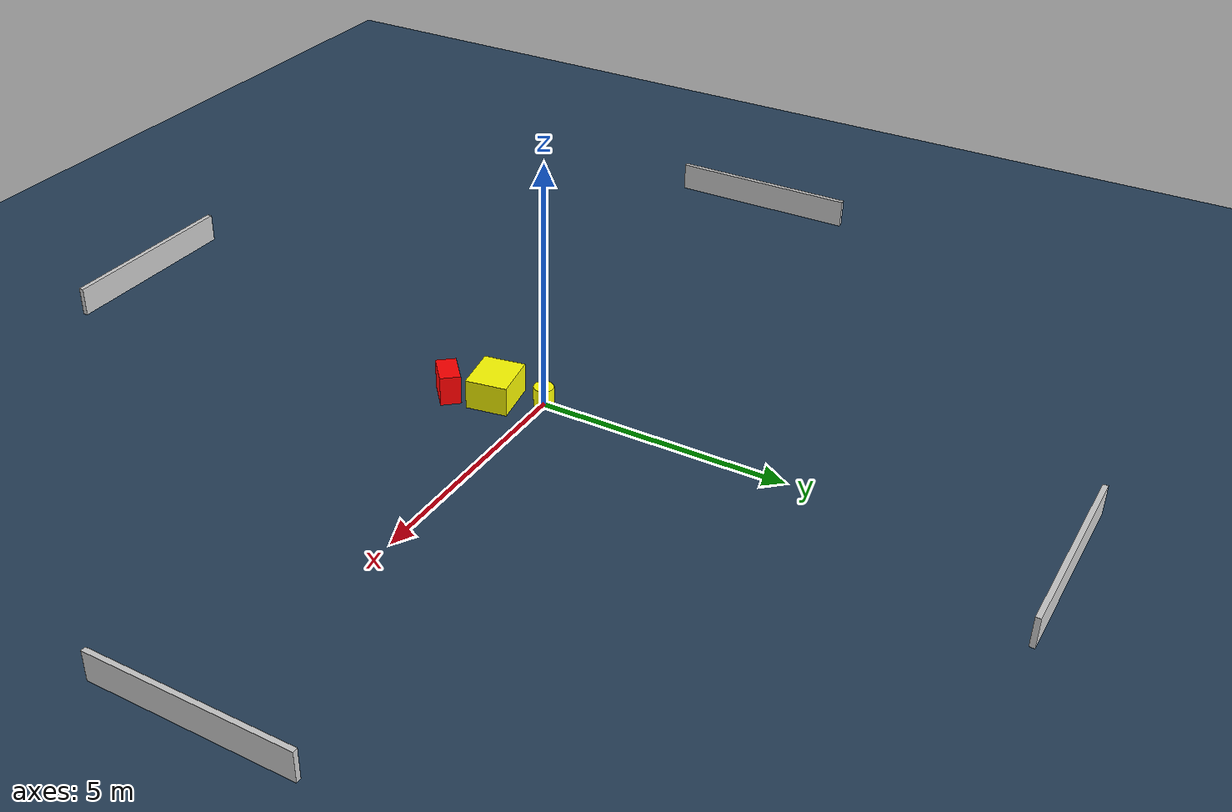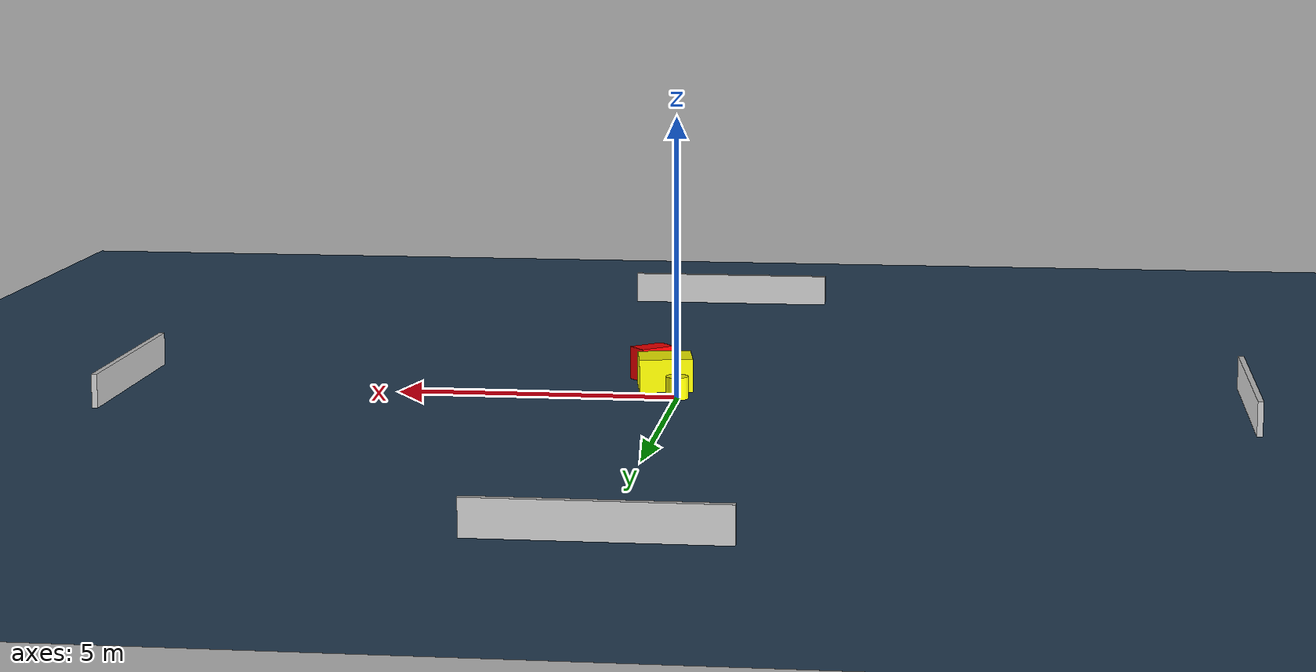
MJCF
<?xml version="1.0" ?>
<mujoco model="generated_environment">
  <option timestep="0.01" integrator="RK4" cone="elliptic"/>
  <default>
    <geom density="1"/>
  </default>
  <asset>
    <texture builtin="gradient" height="3072" name="skybox" rgb1="0.3 0.5 0.7" rgb2="0 0 0" type="skybox" width="512"/>
    <texture builtin="checker" height="300" name="groundplane" rgb1="0.2 0.3 0.4" rgb2="0.1 0.2 0.3" type="2d" width="300"/>
    <material name="groundplane" reflectance="0.2" texrepeat="5 5" texture="groundplane"/>
  </asset>
  <worldbody>
    <light dir="0 0 -1" directional="true" pos="0 0 1.5"/>
    <geom condim="3" friction="0.5 0.005 0.001" material="groundplane" name="floor" pos="0 0 0" size="0 0 0.05" type="plane"/>
    <body name="walls">
      <geom name="wall_1" condim="4" pos="-10.0 0.0 0.3" rgba="0.800000011920929 0.800000011920929 0.800000011920929 1.0" size="0.05 2.0 0.3" type="box"/>
      <geom name="wall_2" condim="4" pos="10.0 0.0 0.3" rgba="0.800000011920929 0.800000011920929 0.800000011920929 1.0" size="0.05 2.0 0.3" type="box"/>
      <geom name="wall_3" condim="4" pos="0.0 -10.0 0.3" rgba="0.800000011920929 0.800000011920929 0.800000011920929 1.0" size="2.0 0.05 0.3" type="box"/>
      <geom name="wall_4" condim="4" pos="0.0 10.0 0.3" rgba="0.800000011920929 0.800000011920929 0.800000011920929 1.0" size="2.0 0.05 0.3" type="box"/>
    </body>
    <body name="robot">
      <joint name="joint_x" type="slide" pos="0 0 0" axis="1 0 0"/>
      <joint name="joint_y" type="slide" pos="0 0 0" axis="0 1 0"/>
      <geom name="robot" type="cylinder" pos="0.0 0.0 0.2" size="0.2 0.2 0.0" mass="5.0" friction="1.0 0.005 0.0001" condim="4" rgba="1.0 1.0 0.0 1.0"/>
    </body>
    <body name="obstacle_1_movable">
      <geom name="obstacle_1_movable" condim="4" pos="0.3167094575581289 -0.8829880566539846 0.3" euler="0 0 99.70351368071259" friction="0.0 0.005 0.001" rgba="1.0 1.0 0.0 1.0" size="0.4164621997731289 0.48116125254163 0.3" type="box" mass="0.1"/>
      <joint type="free"/>
    </body>
    <body name="obstacle_2_static">
      <geom name="obstacle_2_static" condim="4" pos="0.6606590984333298 -1.7393811945176745 0.3" euler="0 0 221.0433865041351" friction="0.0 0.005 0.001" rgba="1.0 0.0 0.0 1.0" size="0.33886125498964825 0.20332437120426133 0.3" type="box"/>
    </body>
  </worldbody>
  <actuator>
    <motor name="actuator_x" joint="joint_x" gear="1" ctrlrange="-1 1"/>
    <motor name="actuator_y" joint="joint_y" gear="1" ctrlrange="-1 1"/>
  </actuator>
</mujoco>
